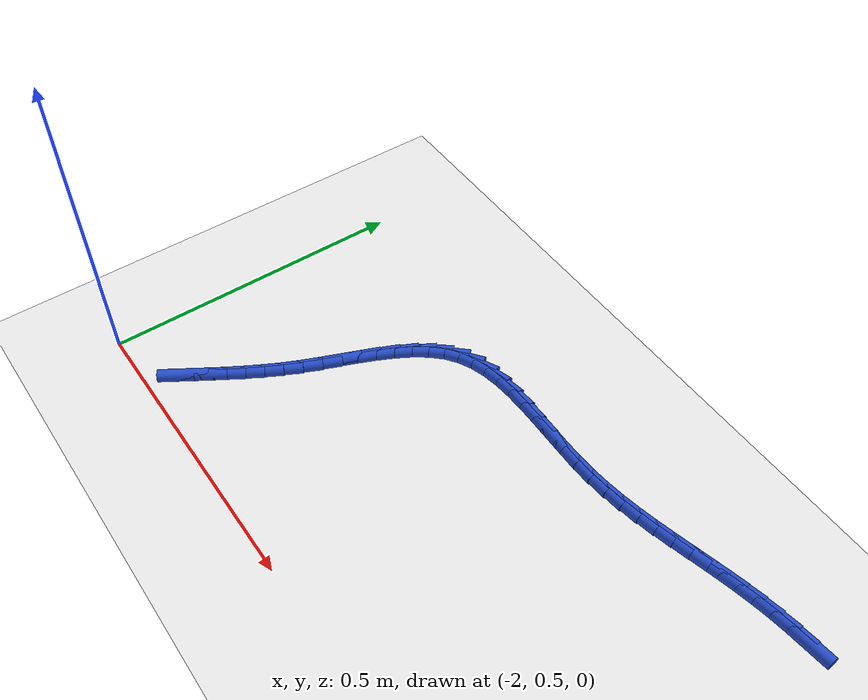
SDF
<sdf version="1.6">
 <world name="default">
  <model name="ground_plane">
   <static>1</static>
   <link name="link">
    <collision name="collision">
     <geometry><plane><normal>0 0 1</normal><size>100 100</size></plane></geometry>
     <surface><friction><ode><mu>100</mu><mu2>50</mu2></ode></friction></surface>
    </collision>
    <visual name="visual">
     <cast_shadows>0</cast_shadows>
     <geometry><plane><normal>0 0 1</normal><size>100 100</size></plane></geometry>
     <material>
      <script><uri>file://media/materials/scripts/gazebo.material</uri><name>Gazebo/WhiteGlow</name></script>
     </material>
    </visual>
   </link>
  </model>
  <model name="line">
   <link name="link_56">
    <pose>-1.0042975665790854 1.0222486551558572 0.01 0 1.57 0.09235780207010844</pose>
    <collision name="collision">
     <geometry><cylinder><radius>0.01</radius><length>0.08</length></cylinder></geometry>
    </collision>
    <visual name="visual">
     <material>
      <script><name>Gazebo/Blue</name><uri>file://media/materials/scripts/gazebo.material</uri></script>
     </material>
     <geometry><cylinder><radius>0.01</radius><length>0.08</length></cylinder></geometry>
    </visual>
   </link>
   <link name="link_57">
    <pose>-1.0326967363043935 1.0196182870214412 0.01 0 1.57 0.12513298274729653</pose>
    <collision name="collision">
     <geometry><cylinder><radius>0.01</radius><length>0.08</length></cylinder></geometry>
    </collision>
    <visual name="visual">
     <material>
      <script><name>Gazebo/Blue</name><uri>file://media/materials/scripts/gazebo.material</uri></script>
     </material>
     <geometry><cylinder><radius>0.01</radius><length>0.08</length></cylinder></geometry>
    </visual>
   </link>
   <link name="link_58">
    <pose>-1.0608428762045576 1.016077777855406 0.01 0 1.57 0.1606612151877009</pose>
    <collision name="collision">
     <geometry><cylinder><radius>0.01</radius><length>0.08</length></cylinder></geometry>
    </collision>
    <visual name="visual">
     <material>
      <script><name>Gazebo/Blue</name><uri>file://media/materials/scripts/gazebo.material</uri></script>
     </material>
     <geometry><cylinder><radius>0.01</radius><length>0.08</length></cylinder></geometry>
    </visual>
   </link>
   <link name="link_59">
    <pose>-1.0887253640423424 1.0115591985149877 0.01 0 1.57 0.1956345536778979</pose>
    <collision name="collision">
     <geometry><cylinder><radius>0.01</radius><length>0.08</length></cylinder></geometry>
    </collision>
    <visual name="visual">
     <material>
      <script><name>Gazebo/Blue</name><uri>file://media/materials/scripts/gazebo.material</uri></script>
     </material>
     <geometry><cylinder><radius>0.01</radius><length>0.08</length></cylinder></geometry>
    </visual>
   </link>
   <link name="link_60">
    <pose>-1.1163638455622071 1.0060821028397198 0.01 0 1.57 0.22202229952930339</pose>
    <collision name="collision">
     <geometry><cylinder><radius>0.01</radius><length>0.08</length></cylinder></geometry>
    </collision>
    <visual name="visual">
     <material>
      <script><name>Gazebo/Blue</name><uri>file://media/materials/scripts/gazebo.material</uri></script>
     </material>
     <geometry><cylinder><radius>0.01</radius><length>0.08</length></cylinder></geometry>
    </visual>
   </link>
   <link name="link_61">
    <pose>-1.14385097299019 0.999877053939564 0.01 0 1.57 0.238501276424082</pose>
    <collision name="collision">
     <geometry><cylinder><radius>0.01</radius><length>0.08</length></cylinder></geometry>
    </collision>
    <visual name="visual">
     <material>
      <script><name>Gazebo/Blue</name><uri>file://media/materials/scripts/gazebo.material</uri></script>
     </material>
     <geometry><cylinder><radius>0.01</radius><length>0.08</length></cylinder></geometry>
    </visual>
   </link>
   <link name="link_62">
    <pose>-1.1712901850815618 0.9932057910285118 0.01 0 1.57 0.24504896687329256</pose>
    <collision name="collision">
     <geometry><cylinder><radius>0.01</radius><length>0.08</length></cylinder></geometry>
    </collision>
    <visual name="visual">
     <material>
      <script><name>Gazebo/Blue</name><uri>file://media/materials/scripts/gazebo.material</uri></script>
     </material>
     <geometry><cylinder><radius>0.01</radius><length>0.08</length></cylinder></geometry>
    </visual>
   </link>
   <link name="link_63">
    <pose>-1.1987849205915966 0.9863300533205562 0.01 0 1.57 0.2417444585819403</pose>
    <collision name="collision">
     <geometry><cylinder><radius>0.01</radius><length>0.08</length></cylinder></geometry>
    </collision>
    <visual name="visual">
     <material>
      <script><name>Gazebo/Blue</name><uri>file://media/materials/scripts/gazebo.material</uri></script>
     </material>
     <geometry><cylinder><radius>0.01</radius><length>0.08</length></cylinder></geometry>
    </visual>
   </link>
   <link name="link_64">
    <pose>-1.2264386182755662 0.9795115800296896 0.01 0 1.57 0.22874653062801914</pose>
    <collision name="collision">
     <geometry><cylinder><radius>0.01</radius><length>0.08</length></cylinder></geometry>
    </collision>
    <visual name="visual">
     <material>
      <script><name>Gazebo/Blue</name><uri>file://media/materials/scripts/gazebo.material</uri></script>
     </material>
     <geometry><cylinder><radius>0.01</radius><length>0.08</length></cylinder></geometry>
    </visual>
   </link>
   <link name="link_65">
    <pose>-1.2543547168887434 0.9730121103699039 0.01 0 1.57 0.2062985341336989</pose>
    <collision name="collision">
     <geometry><cylinder><radius>0.01</radius><length>0.08</length></cylinder></geometry>
    </collision>
    <visual name="visual">
     <material>
      <script><name>Gazebo/Blue</name><uri>file://media/materials/scripts/gazebo.material</uri></script>
     </material>
     <geometry><cylinder><radius>0.01</radius><length>0.08</length></cylinder></geometry>
    </visual>
   </link>
   <link name="link_66">
    <pose>-1.2826366551864012 0.9670933835551917 0.01 0 1.57 0.17475654560084816</pose>
    <collision name="collision">
     <geometry><cylinder><radius>0.01</radius><length>0.08</length></cylinder></geometry>
    </collision>
    <visual name="visual">
     <material>
      <script><name>Gazebo/Blue</name><uri>file://media/materials/scripts/gazebo.material</uri></script>
     </material>
     <geometry><cylinder><radius>0.01</radius><length>0.08</length></cylinder></geometry>
    </visual>
   </link>
   <link name="link_67">
    <pose>-1.3113878719238117 0.9620171387995455 0.01 0 1.57 0.13463388303937102</pose>
    <collision name="collision">
     <geometry><cylinder><radius>0.01</radius><length>0.08</length></cylinder></geometry>
    </collision>
    <visual name="visual">
     <material>
      <script><name>Gazebo/Blue</name><uri>file://media/materials/scripts/gazebo.material</uri></script>
     </material>
     <geometry><cylinder><radius>0.01</radius><length>0.08</length></cylinder></geometry>
    </visual>
   </link>
   <link name="link_68">
    <pose>-1.3407118058562473 0.9580451153169574 0.01 0 1.57 0.08665098305445025</pose>
    <collision name="collision">
     <geometry><cylinder><radius>0.01</radius><length>0.08</length></cylinder></geometry>
    </collision>
    <visual name="visual">
     <material>
      <script><name>Gazebo/Blue</name><uri>file://media/materials/scripts/gazebo.material</uri></script>
     </material>
     <geometry><cylinder><radius>0.01</radius><length>0.08</length></cylinder></geometry>
    </visual>
   </link>
   <link name="link_69">
    <pose>-1.3707118957389814 0.95543905232142 0.01 0 1.57 0.03387408539257504</pose>
    <collision name="collision">
     <geometry><cylinder><radius>0.01</radius><length>0.08</length></cylinder></geometry>
    </collision>
    <visual name="visual">
     <material>
      <script><name>Gazebo/Blue</name><uri>file://media/materials/scripts/gazebo.material</uri></script>
     </material>
     <geometry><cylinder><radius>0.01</radius><length>0.08</length></cylinder></geometry>
    </visual>
   </link>
   <link name="link_70">
    <pose>-1.4014574639210124 0.95439717578721 0.01 0 1.57 -0.006248323624622021</pose>
    <collision name="collision">
     <geometry><cylinder><radius>0.01</radius><length>0.08</length></cylinder></geometry>
    </collision>
    <visual name="visual">
     <material>
      <script><name>Gazebo/Blue</name><uri>file://media/materials/scripts/gazebo.material</uri></script>
     </material>
     <geometry><cylinder><radius>0.01</radius><length>0.08</length></cylinder></geometry>
    </visual>
   </link>
   <link name="link_71">
    <pose>-1.432735775019531 0.9545926153408126 0.01 0 1.57 -0.02691177790675031</pose>
    <collision name="collision">
     <geometry><cylinder><radius>0.01</radius><length>0.08</length></cylinder></geometry>
    </collision>
    <visual name="visual">
     <material>
      <script><name>Gazebo/Blue</name><uri>file://media/materials/scripts/gazebo.material</uri></script>
     </material>
     <geometry><cylinder><radius>0.01</radius><length>0.08</length></cylinder></geometry>
    </visual>
   </link>
   <link name="link_72">
    <pose>-1.464194939126318 0.955439441824532 0.01 0 1.57 -0.029091880325117152</pose>
    <collision name="collision">
     <geometry><cylinder><radius>0.01</radius><length>0.08</length></cylinder></geometry>
    </collision>
    <visual name="visual">
     <material>
      <script><name>Gazebo/Blue</name><uri>file://media/materials/scripts/gazebo.material</uri></script>
     </material>
     <geometry><cylinder><radius>0.01</radius><length>0.08</length></cylinder></geometry>
    </visual>
   </link>
   <link name="link_73">
    <pose>-1.4954820857775526 0.9563499006169238 0.01 0 1.57 -0.01255812109011721</pose>
    <collision name="collision">
     <geometry><cylinder><radius>0.01</radius><length>0.08</length></cylinder></geometry>
    </collision>
    <visual name="visual">
     <material>
      <script><name>Gazebo/Blue</name><uri>file://media/materials/scripts/gazebo.material</uri></script>
     </material>
     <geometry><cylinder><radius>0.01</radius><length>0.08</length></cylinder></geometry>
    </visual>
   </link>
   <link name="link_74">
    <pose>-1.5262443445094167 0.9567362370965434 0.01 0 1.57 0.024273384031010804</pose>
    <collision name="collision">
     <geometry><cylinder><radius>0.01</radius><length>0.08</length></cylinder></geometry>
    </collision>
    <visual name="visual">
     <material>
      <script><name>Gazebo/Blue</name><uri>file://media/materials/scripts/gazebo.material</uri></script>
     </material>
     <geometry><cylinder><radius>0.01</radius><length>0.08</length></cylinder></geometry>
    </visual>
   </link>
   <link name="link_75">
    <pose>-1.5561288448580906 0.9560106966419463 0.01 0 1.57 0.08443556943239984</pose>
    <collision name="collision">
     <geometry><cylinder><radius>0.01</radius><length>0.08</length></cylinder></geometry>
    </collision>
    <visual name="visual">
     <material>
      <script><name>Gazebo/Blue</name><uri>file://media/materials/scripts/gazebo.material</uri></script>
     </material>
     <geometry><cylinder><radius>0.01</radius><length>0.08</length></cylinder></geometry>
    </visual>
   </link>
   <link name="link_76">
    <pose>-1.5847827163597534 0.9535855246316874 0.01 0 1.57 0.17235816412155422</pose>
    <collision name="collision">
     <geometry><cylinder><radius>0.01</radius><length>0.08</length></cylinder></geometry>
    </collision>
    <visual name="visual">
     <material>
      <script><name>Gazebo/Blue</name><uri>file://media/materials/scripts/gazebo.material</uri></script>
     </material>
     <geometry><cylinder><radius>0.01</radius><length>0.08</length></cylinder></geometry>
    </visual>
   </link>
   <link name="link_77">
    <pose>-1.6118530885505873 0.9488729664443225 0.01 0 1.57 0.29318965375081596</pose>
    <collision name="collision">
     <geometry><cylinder><radius>0.01</radius><length>0.08</length></cylinder></geometry>
    </collision>
    <visual name="visual">
     <material>
      <script><name>Gazebo/Blue</name><uri>file://media/materials/scripts/gazebo.material</uri></script>
     </material>
     <geometry><cylinder><radius>0.01</radius><length>0.08</length></cylinder></geometry>
    </visual>
   </link>
   <link name="link_78">
    <pose>-1.6369870909667714 0.941285267458407 0.01 0 1.57 0.45054346294270253</pose>
    <collision name="collision">
     <geometry><cylinder><radius>0.01</radius><length>0.08</length></cylinder></geometry>
    </collision>
    <visual name="visual">
     <material>
      <script><name>Gazebo/Blue</name><uri>file://media/materials/scripts/gazebo.material</uri></script>
     </material>
     <geometry><cylinder><radius>0.01</radius><length>0.08</length></cylinder></geometry>
    </visual>
   </link>
   <link name="link_79">
    <pose>-1.659831853144487 0.930234673052496 0.01 0 1.57 0.6389413283094714</pose>
    <collision name="collision">
     <geometry><cylinder><radius>0.01</radius><length>0.08</length></cylinder></geometry>
    </collision>
    <visual name="visual">
     <material>
      <script><name>Gazebo/Blue</name><uri>file://media/materials/scripts/gazebo.material</uri></script>
     </material>
     <geometry><cylinder><radius>0.01</radius><length>0.08</length></cylinder></geometry>
    </visual>
   </link>
   <link name="link_80">
    <pose>-1.6800750640815567 0.91519600022915 0.01 0 1.57 0.8148316942960827</pose>
    <collision name="collision">
     <geometry><cylinder><radius>0.01</radius><length>0.08</length></cylinder></geometry>
    </collision>
    <visual name="visual">
     <material>
      <script><name>Gazebo/Blue</name><uri>file://media/materials/scripts/gazebo.material</uri></script>
     </material>
     <geometry><cylinder><radius>0.01</radius><length>0.08</length></cylinder></geometry>
    </visual>
   </link>
   <link name="link_81">
    <pose>-1.6978542920339157 0.8963381007400574 0.01 0 1.57 0.9516082908061267</pose>
    <collision name="collision">
     <geometry><cylinder><radius>0.01</radius><length>0.08</length></cylinder></geometry>
    </collision>
    <visual name="visual">
     <material>
      <script><name>Gazebo/Blue</name><uri>file://media/materials/scripts/gazebo.material</uri></script>
     </material>
     <geometry><cylinder><radius>0.01</radius><length>0.08</length></cylinder></geometry>
    </visual>
   </link>
   <link name="link_82">
    <pose>-1.7135874011851793 0.8742622426138137 0.01 0 1.57 1.0515643289524297</pose>
    <collision name="collision">
     <geometry><cylinder><radius>0.01</radius><length>0.08</length></cylinder></geometry>
    </collision>
    <visual name="visual">
     <material>
      <script><name>Gazebo/Blue</name><uri>file://media/materials/scripts/gazebo.material</uri></script>
     </material>
     <geometry><cylinder><radius>0.01</radius><length>0.08</length></cylinder></geometry>
    </visual>
   </link>
   <link name="link_83">
    <pose>-1.7276965000164999 0.8495762416135948 0.01 0 1.57 1.1203326750959222</pose>
    <collision name="collision">
     <geometry><cylinder><radius>0.01</radius><length>0.08</length></cylinder></geometry>
    </collision>
    <visual name="visual">
     <material>
      <script><name>Gazebo/Blue</name><uri>file://media/materials/scripts/gazebo.material</uri></script>
     </material>
     <geometry><cylinder><radius>0.01</radius><length>0.08</length></cylinder></geometry>
    </visual>
   </link>
   <link name="link_84">
    <pose>-1.740603697009029 0.8228879135025773 0.01 0 1.57 1.1631431236582317</pose>
    <collision name="collision">
     <geometry><cylinder><radius>0.01</radius><length>0.08</length></cylinder></geometry>
    </collision>
    <visual name="visual">
     <material>
      <script><name>Gazebo/Blue</name><uri>file://media/materials/scripts/gazebo.material</uri></script>
     </material>
     <geometry><cylinder><radius>0.01</radius><length>0.08</length></cylinder></geometry>
    </visual>
   </link>
   <link name="link_85">
    <pose>-1.7527311006439183 0.7948050740439366 0.01 0 1.57 1.1836812973853161</pose>
    <collision name="collision">
     <geometry><cylinder><radius>0.01</radius><length>0.08</length></cylinder></geometry>
    </collision>
    <visual name="visual">
     <material>
      <script><name>Gazebo/Blue</name><uri>file://media/materials/scripts/gazebo.material</uri></script>
     </material>
     <geometry><cylinder><radius>0.01</radius><length>0.08</length></cylinder></geometry>
    </visual>
   </link>
   <link name="link_86">
    <pose>-1.764500819402319 0.7659355390008495 0.01 0 1.57 1.1839323312149932</pose>
    <collision name="collision">
     <geometry><cylinder><radius>0.01</radius><length>0.08</length></cylinder></geometry>
    </collision>
    <visual name="visual">
     <material>
      <script><name>Gazebo/Blue</name><uri>file://media/materials/scripts/gazebo.material</uri></script>
     </material>
     <geometry><cylinder><radius>0.01</radius><length>0.08</length></cylinder></geometry>
    </visual>
   </link>
   <link name="link_87">
    <pose>-1.7763349617653834 0.7368871241364916 0.01 0 1.57 1.1642766994750857</pose>
    <collision name="collision">
     <geometry><cylinder><radius>0.01</radius><length>0.08</length></cylinder></geometry>
    </collision>
    <visual name="visual">
     <material>
      <script><name>Gazebo/Blue</name><uri>file://media/materials/scripts/gazebo.material</uri></script>
     </material>
     <geometry><cylinder><radius>0.01</radius><length>0.08</length></cylinder></geometry>
    </visual>
   </link>
   <link name="link_88">
    <pose>-1.7886556362142643 0.7082676452140391 0.01 0 1.57 1.126688864500258</pose>
    <collision name="collision">
     <geometry><cylinder><radius>0.01</radius><length>0.08</length></cylinder></geometry>
    </collision>
    <visual name="visual">
     <material>
      <script><name>Gazebo/Blue</name><uri>file://media/materials/scripts/gazebo.material</uri></script>
     </material>
     <geometry><cylinder><radius>0.01</radius><length>0.08</length></cylinder></geometry>
    </visual>
   </link>
   <link name="link_89">
    <pose>-1.8018188015678243 0.6806027830309569 0.01 0 1.57 1.0886506475863333</pose>
    <collision name="collision">
     <geometry><cylinder><radius>0.01</radius><length>0.08</length></cylinder></geometry>
    </collision>
    <visual name="visual">
     <material>
      <script><name>Gazebo/Blue</name><uri>file://media/materials/scripts/gazebo.material</uri></script>
     </material>
     <geometry><cylinder><radius>0.01</radius><length>0.08</length></cylinder></geometry>
    </visual>
   </link>
   <link name="link_90">
    <pose>-1.815781488292 0.6539228875628075 0.01 0 1.57 1.0575207611791373</pose>
    <collision name="collision">
     <geometry><cylinder><radius>0.01</radius><length>0.08</length></cylinder></geometry>
    </collision>
    <visual name="visual">
     <material>
      <script><name>Gazebo/Blue</name><uri>file://media/materials/scripts/gazebo.material</uri></script>
     </material>
     <geometry><cylinder><radius>0.01</radius><length>0.08</length></cylinder></geometry>
    </visual>
   </link>
   <link name="link_91">
    <pose>-1.8303519157022792 0.628073536885846 0.01 0 1.57 1.0338304089501644</pose>
    <collision name="collision">
     <geometry><cylinder><radius>0.01</radius><length>0.08</length></cylinder></geometry>
    </collision>
    <visual name="visual">
     <material>
      <script><name>Gazebo/Blue</name><uri>file://media/materials/scripts/gazebo.material</uri></script>
     </material>
     <geometry><cylinder><radius>0.01</radius><length>0.08</length></cylinder></geometry>
    </visual>
   </link>
   <link name="link_92">
    <pose>-1.8453380488950708 0.602899993424292 0.01 0 1.57 1.0179932045572346</pose>
    <collision name="collision">
     <geometry><cylinder><radius>0.01</radius><length>0.08</length></cylinder></geometry>
    </collision>
    <visual name="visual">
     <material>
      <script><name>Gazebo/Blue</name><uri>file://media/materials/scripts/gazebo.material</uri></script>
     </material>
     <geometry><cylinder><radius>0.01</radius><length>0.08</length></cylinder></geometry>
    </visual>
   </link>
   <link name="link_93">
    <pose>-1.8605478529667827 0.5782475196023663 0.01 0 1.57 1.0103455593235924</pose>
    <collision name="collision">
     <geometry><cylinder><radius>0.01</radius><length>0.08</length></cylinder></geometry>
    </collision>
    <visual name="visual">
     <material>
      <script><name>Gazebo/Blue</name><uri>file://media/materials/scripts/gazebo.material</uri></script>
     </material>
     <geometry><cylinder><radius>0.01</radius><length>0.08</length></cylinder></geometry>
    </visual>
   </link>
   <link name="link_94">
    <pose>-1.875789293013822 0.5539613778442886 0.01 0 1.57 1.011168687293085</pose>
    <collision name="collision">
     <geometry><cylinder><radius>0.01</radius><length>0.08</length></cylinder></geometry>
    </collision>
    <visual name="visual">
     <material>
      <script><name>Gazebo/Blue</name><uri>file://media/materials/scripts/gazebo.material</uri></script>
     </material>
     <geometry><cylinder><radius>0.01</radius><length>0.08</length></cylinder></geometry>
    </visual>
   </link>
  </model>
 </world>
</sdf>
